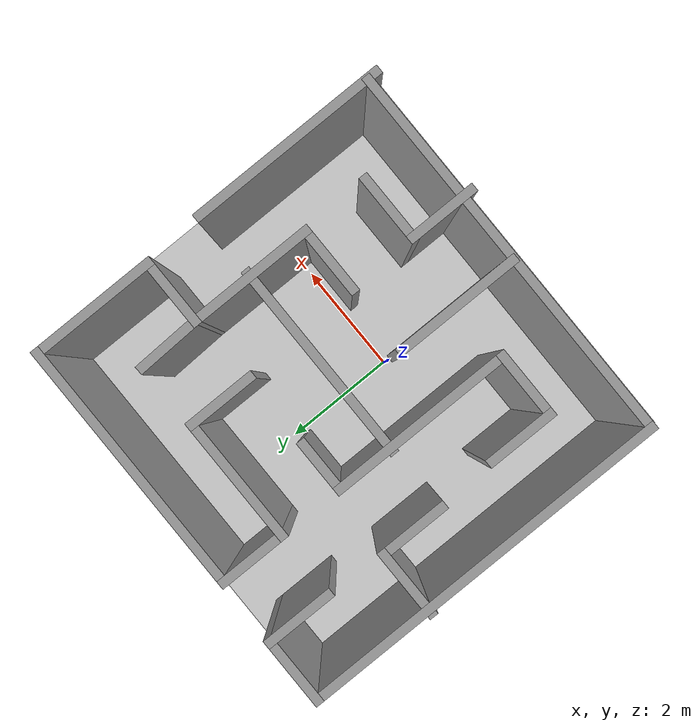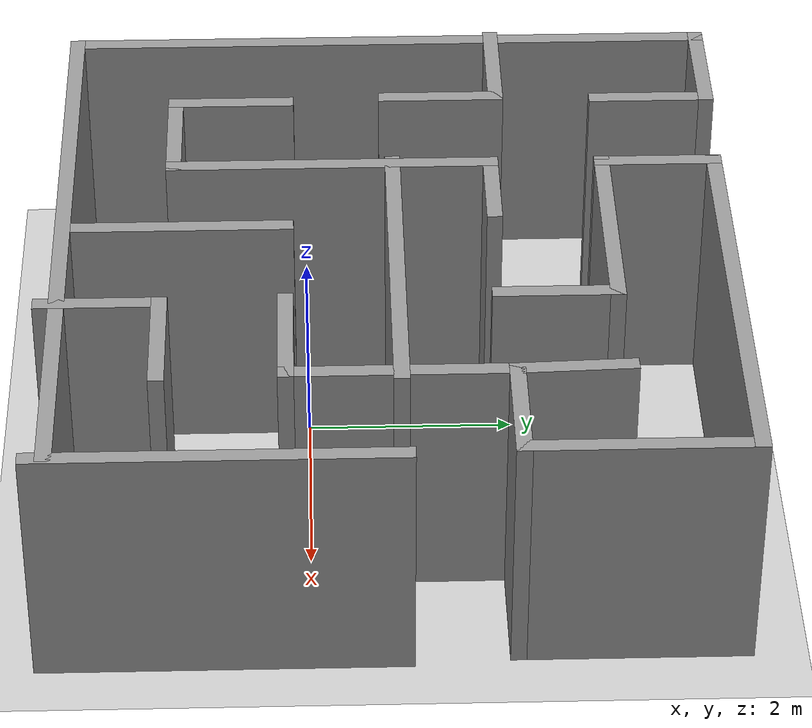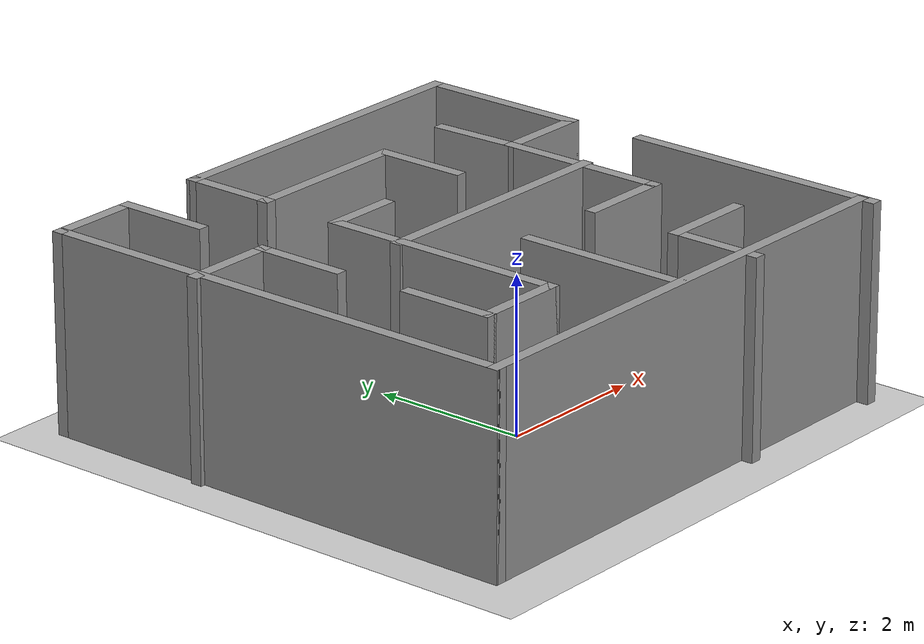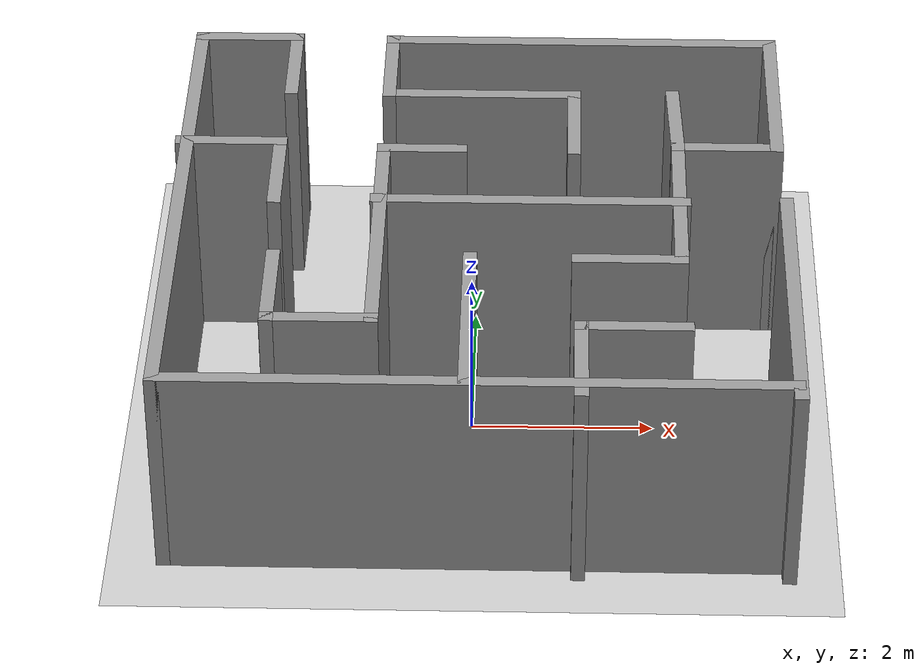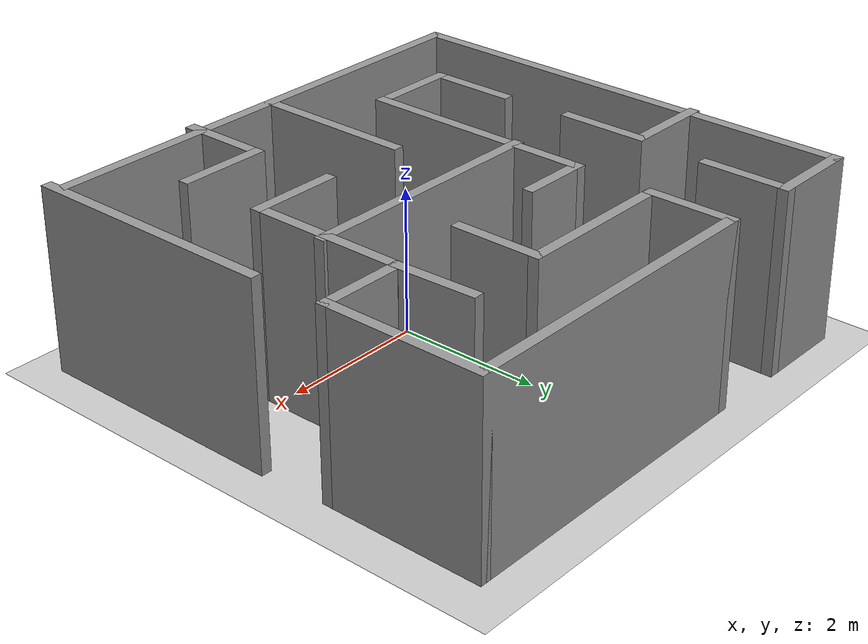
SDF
<sdf version="1.7">
 <world name="default">
  <light name="sun" type="directional">
   <pose>0 0 10 0 -0 0</pose>
   <diffuse>0.8 0.8 0.8 1</diffuse>
   <specular>0.2 0.2 0.2 1</specular>
   <attenuation>
    <range>1000</range>
    <constant>0.9</constant>
    <linear>0.01</linear>
    <quadratic>0.001</quadratic>
   </attenuation>
   <direction>-0.5 0.1 -0.9</direction>
   <spot><inner_angle>0</inner_angle><outer_angle>0</outer_angle><falloff>0</falloff></spot>
  </light>
  <model name="ground_plane">
   <static>1</static>
   <link name="link">
    <collision name="collision">
     <geometry><plane><normal>0 0 1</normal><size>100 100</size></plane></geometry>
     <surface>
      <contact><collide_bitmask>65535</collide_bitmask></contact>
      <friction><ode><mu>100</mu><mu2>50</mu2></ode></friction>
     </surface>
    </collision>
    <visual name="visual">
     <cast_shadows>0</cast_shadows>
     <geometry><plane><normal>0 0 1</normal><size>100 100</size></plane></geometry>
     <material>
      <script><uri>file://media/materials/scripts/gazebo.material</uri><name>Gazebo/Grey</name></script>
     </material>
    </visual>
   </link>
  </model>
  <gravity>0 0 -9.8</gravity>
  <magnetic_field>6e-06 2.3e-05 -4.2e-05</magnetic_field>
  <atmosphere type="adiabatic"/>
  <physics type="ode">
   <max_step_size>0.001</max_step_size>
   <real_time_factor>1</real_time_factor>
   <real_time_update_rate>1000</real_time_update_rate>
  </physics>
  <scene><ambient>0.4 0.4 0.4 1</ambient><background>0.7 0.7 0.7 1</background><shadows>1</shadows></scene>
  <spherical_coordinates>
   <surface_model>EARTH_WGS84</surface_model>
   <latitude_deg>0</latitude_deg>
   <longitude_deg>0</longitude_deg>
   <elevation>0</elevation>
   <heading_deg>0</heading_deg>
  </spherical_coordinates>
  <model name="test_maze">
   <pose>0.065204 0.772473 0 0 -0 0</pose>
   <link name="Wall_0">
    <collision name="Wall_0_Collision">
     <geometry><box><size>1.25 0.15 2.5</size></box></geometry>
     <pose>0 0 1.25 0 -0 0</pose>
    </collision>
    <visual name="Wall_0_Visual">
     <pose>0 0 1.25 0 -0 0</pose>
     <geometry><box><size>1.25 0.15 2.5</size></box></geometry>
     <material>
      <script><uri>file://media/materials/scripts/gazebo.material</uri><name>Gazebo/Grey</name></script>
      <ambient>1 1 1 1</ambient>
     </material>
     <meta><layer>0</layer></meta>
    </visual>
    <pose>-2.18399 2.70337 0 0 -0 1.5708</pose>
   </link>
   <link name="Wall_1">
    <collision name="Wall_1_Collision">
     <geometry><box><size>1.25 0.15 2.5</size></box></geometry>
     <pose>0 0 1.25 0 -0 0</pose>
    </collision>
    <visual name="Wall_1_Visual">
     <pose>0 0 1.25 0 -0 0</pose>
     <geometry><box><size>1.25 0.15 2.5</size></box></geometry>
     <material>
      <script><uri>file://media/materials/scripts/gazebo.material</uri><name>Gazebo/Grey</name></script>
      <ambient>1 1 1 1</ambient>
     </material>
     <meta><layer>0</layer></meta>
    </visual>
    <pose>-2.73399 3.25337 0 0 -0 3.14159</pose>
   </link>
   <link name="Wall_10">
    <collision name="Wall_10_Collision">
     <geometry><box><size>1.25 0.15 2.5</size></box></geometry>
     <pose>0 0 1.25 0 -0 0</pose>
    </collision>
    <visual name="Wall_10_Visual">
     <pose>0 0 1.25 0 -0 0</pose>
     <geometry><box><size>1.25 0.15 2.5</size></box></geometry>
     <material>
      <script><uri>file://media/materials/scripts/gazebo.material</uri><name>Gazebo/Grey</name></script>
      <ambient>1 1 1 1</ambient>
     </material>
     <meta><layer>0</layer></meta>
    </visual>
    <pose>1.10897 -2.6931 0 0 -0 -1.5708</pose>
   </link>
   <link name="Wall_12">
    <collision name="Wall_12_Collision">
     <geometry><box><size>2.25 0.15 2.5</size></box></geometry>
     <pose>0 0 1.25 0 -0 0</pose>
    </collision>
    <visual name="Wall_12_Visual">
     <pose>0 0 1.25 0 -0 0</pose>
     <geometry><box><size>2.25 0.15 2.5</size></box></geometry>
     <material>
      <script><uri>file://media/materials/scripts/gazebo.material</uri><name>Gazebo/Grey</name></script>
      <ambient>1 1 1 1</ambient>
     </material>
     <meta><layer>0</layer></meta>
    </visual>
    <pose>-0.080957 -2.01832 0 0 -0 1.5708</pose>
   </link>
   <link name="Wall_14">
    <collision name="Wall_14_Collision">
     <geometry><box><size>1.25 0.15 2.5</size></box></geometry>
     <pose>0 0 1.25 0 -0 0</pose>
    </collision>
    <visual name="Wall_14_Visual">
     <pose>0 0 1.25 0 -0 0</pose>
     <geometry><box><size>1.25 0.15 2.5</size></box></geometry>
     <material>
      <script><uri>file://media/materials/scripts/gazebo.material</uri><name>Gazebo/Grey</name></script>
      <ambient>1 1 1 1</ambient>
     </material>
     <meta><layer>0</layer></meta>
    </visual>
    <pose>1.02931 1.57579 0 0 -0 1.5708</pose>
   </link>
   <link name="Wall_15">
    <collision name="Wall_15_Collision">
     <geometry><box><size>2.25 0.15 2.5</size></box></geometry>
     <pose>0 0 1.25 0 -0 0</pose>
    </collision>
    <visual name="Wall_15_Visual">
     <pose>0 0 1.25 0 -0 0</pose>
     <geometry><box><size>2.25 0.15 2.5</size></box></geometry>
     <material>
      <script><uri>file://media/materials/scripts/gazebo.material</uri><name>Gazebo/Grey</name></script>
      <ambient>1 1 1 1</ambient>
     </material>
     <meta><layer>0</layer></meta>
    </visual>
    <pose>-0.020688 2.1258 0 0 -0 3.14159</pose>
   </link>
   <link name="Wall_16">
    <collision name="Wall_16_Collision">
     <geometry><box><size>1.25 0.15 2.5</size></box></geometry>
     <pose>0 0 1.25 0 -0 0</pose>
    </collision>
    <visual name="Wall_16_Visual">
     <pose>0 0 1.25 0 -0 0</pose>
     <geometry><box><size>1.25 0.15 2.5</size></box></geometry>
     <material>
      <script><uri>file://media/materials/scripts/gazebo.material</uri><name>Gazebo/Grey</name></script>
      <ambient>1 1 1 1</ambient>
     </material>
     <meta><layer>0</layer></meta>
    </visual>
    <pose>-1.07069 2.67579 0 0 -0 1.5708</pose>
   </link>
   <link name="Wall_17">
    <collision name="Wall_17_Collision">
     <geometry><box><size>4.5 0.15 2.5</size></box></geometry>
     <pose>0 0 1.25 0 -0 0</pose>
    </collision>
    <visual name="Wall_17_Visual">
     <pose>0 0 1.25 0 -0 0</pose>
     <geometry><box><size>4.5 0.15 2.5</size></box></geometry>
     <material>
      <script><uri>file://media/materials/scripts/gazebo.material</uri><name>Gazebo/Grey</name></script>
      <ambient>1 1 1 1</ambient>
     </material>
     <meta><layer>0</layer></meta>
    </visual>
    <pose>1.10431 3.22579 0 0 -0 0</pose>
   </link>
   <link name="Wall_18">
    <collision name="Wall_18_Collision">
     <geometry><box><size>2.25 0.15 2.5</size></box></geometry>
     <pose>0 0 1.25 0 -0 0</pose>
    </collision>
    <visual name="Wall_18_Visual">
     <pose>0 0 1.25 0 -0 0</pose>
     <geometry><box><size>2.25 0.15 2.5</size></box></geometry>
     <material>
      <script><uri>file://media/materials/scripts/gazebo.material</uri><name>Gazebo/Grey</name></script>
      <ambient>1 1 1 1</ambient>
     </material>
     <meta><layer>0</layer></meta>
    </visual>
    <pose>3.27931 2.17579 0 0 -0 -1.5708</pose>
   </link>
   <link name="Wall_19">
    <collision name="Wall_19_Collision">
     <geometry><box><size>1.25 0.15 2.5</size></box></geometry>
     <pose>0 0 1.25 0 -0 0</pose>
    </collision>
    <visual name="Wall_19_Visual">
     <pose>0 0 1.25 0 -0 0</pose>
     <geometry><box><size>1.25 0.15 2.5</size></box></geometry>
     <material>
      <script><uri>file://media/materials/scripts/gazebo.material</uri><name>Gazebo/Grey</name></script>
      <ambient>1 1 1 1</ambient>
     </material>
     <meta><layer>0</layer></meta>
    </visual>
    <pose>2.72931 1.12579 0 0 -0 3.14159</pose>
   </link>
   <link name="Wall_2">
    <collision name="Wall_2_Collision">
     <geometry><box><size>6.5 0.15 2.5</size></box></geometry>
     <pose>0 0 1.25 0 -0 0</pose>
    </collision>
    <visual name="Wall_2_Visual">
     <pose>0 0 1.25 0 -0 0</pose>
     <geometry><box><size>6.5 0.15 2.5</size></box></geometry>
     <material>
      <script><uri>file://media/materials/scripts/gazebo.material</uri><name>Gazebo/Grey</name></script>
      <ambient>1 1 1 1</ambient>
     </material>
     <meta><layer>0</layer></meta>
    </visual>
    <pose>-3.28399 0.078368 0 0 -0 -1.5708</pose>
   </link>
   <link name="Wall_20">
    <collision name="Wall_20_Collision">
     <geometry><box><size>2.25 0.15 2.5</size></box></geometry>
     <pose>0 0 1.25 0 -0 0</pose>
    </collision>
    <visual name="Wall_20_Visual">
     <pose>0 0 1.25 0 -0 0</pose>
     <geometry><box><size>2.25 0.15 2.5</size></box></geometry>
     <material>
      <script><uri>file://media/materials/scripts/gazebo.material</uri><name>Gazebo/Grey</name></script>
      <ambient>1 1 1 1</ambient>
     </material>
     <meta><layer>0</layer></meta>
    </visual>
    <pose>2.17931 0.075794 0 0 -0 -1.5708</pose>
   </link>
   <link name="Wall_21">
    <collision name="Wall_21_Collision">
     <geometry><box><size>1.25 0.15 2.5</size></box></geometry>
     <pose>0 0 1.25 0 -0 0</pose>
    </collision>
    <visual name="Wall_21_Visual">
     <pose>0 0 1.25 0 -0 0</pose>
     <geometry><box><size>1.25 0.15 2.5</size></box></geometry>
     <material>
      <script><uri>file://media/materials/scripts/gazebo.material</uri><name>Gazebo/Grey</name></script>
      <ambient>1 1 1 1</ambient>
     </material>
     <meta><layer>0</layer></meta>
    </visual>
    <pose>1.62931 -0.974206 0 0 -0 3.14159</pose>
   </link>
   <link name="Wall_23">
    <collision name="Wall_23_Collision">
     <geometry><box><size>1.25 0.15 2.5</size></box></geometry>
     <pose>0 0 1.25 0 -0 0</pose>
    </collision>
    <visual name="Wall_23_Visual">
     <pose>0 0 1.25 0 -0 0</pose>
     <geometry><box><size>1.25 0.15 2.5</size></box></geometry>
     <material>
      <script><uri>file://media/materials/scripts/gazebo.material</uri><name>Gazebo/Grey</name></script>
      <ambient>1 1 1 1</ambient>
     </material>
     <meta><layer>0</layer></meta>
    </visual>
    <pose>-2.18584 -1.51344 0 0 -0 -1.5708</pose>
   </link>
   <link name="Wall_24">
    <collision name="Wall_24_Collision">
     <geometry><box><size>1.25 0.15 2.5</size></box></geometry>
     <pose>0 0 1.25 0 -0 0</pose>
    </collision>
    <visual name="Wall_24_Visual">
     <pose>0 0 1.25 0 -0 0</pose>
     <geometry><box><size>1.25 0.15 2.5</size></box></geometry>
     <material>
      <script><uri>file://media/materials/scripts/gazebo.material</uri><name>Gazebo/Grey</name></script>
      <ambient>1 1 1 1</ambient>
     </material>
     <meta><layer>0</layer></meta>
    </visual>
    <pose>-1.63584 -2.06344 0 0 -0 0</pose>
   </link>
   <link name="Wall_25">
    <collision name="Wall_25_Collision">
     <geometry><box><size>3.25 0.15 2.5</size></box></geometry>
     <pose>0 0 1.25 0 -0 0</pose>
    </collision>
    <visual name="Wall_25_Visual">
     <pose>0 0 1.25 0 -0 0</pose>
     <geometry><box><size>3.25 0.15 2.5</size></box></geometry>
     <material>
      <script><uri>file://media/materials/scripts/gazebo.material</uri><name>Gazebo/Grey</name></script>
      <ambient>1 1 1 1</ambient>
     </material>
     <meta><layer>0</layer></meta>
    </visual>
    <pose>-1.08584 -0.513438 0 0 -0 1.5708</pose>
   </link>
   <link name="Wall_26">
    <collision name="Wall_26_Collision">
     <geometry><box><size>1 0.15 2.5</size></box></geometry>
     <pose>0 0 1.25 0 -0 0</pose>
    </collision>
    <visual name="Wall_26_Visual">
     <pose>0 0 1.25 0 -0 0</pose>
     <geometry><box><size>1 0.15 2.5</size></box></geometry>
     <material>
      <script><uri>file://media/materials/scripts/gazebo.material</uri><name>Gazebo/Grey</name></script>
      <ambient>1 1 1 1</ambient>
     </material>
     <meta><layer>0</layer></meta>
    </visual>
    <pose>-0.660843 1.03656 0 0 -0 0</pose>
   </link>
   <link name="Wall_28">
    <collision name="Wall_28_Collision">
     <geometry><box><size>3.5 0.15 2.5</size></box></geometry>
     <pose>0 0 1.25 0 -0 0</pose>
    </collision>
    <visual name="Wall_28_Visual">
     <pose>0 0 1.25 0 -0 0</pose>
     <geometry><box><size>3.5 0.15 2.5</size></box></geometry>
     <material>
      <script><uri>file://media/materials/scripts/gazebo.material</uri><name>Gazebo/Grey</name></script>
      <ambient>1 1 1 1</ambient>
     </material>
     <meta><layer>0</layer></meta>
    </visual>
    <pose>0.553165 0.077439 0 0 -0 0</pose>
   </link>
   <link name="Wall_30">
    <collision name="Wall_30_Collision">
     <geometry><box><size>1.18416 0.15 2.5</size></box></geometry>
     <pose>0 0 1.25 0 -0 0</pose>
    </collision>
    <visual name="Wall_30_Visual">
     <pose>0 0 1.25 0 -0 0</pose>
     <geometry><box><size>1.18416 0.15 2.5</size></box></geometry>
     <material>
      <script><uri>file://media/materials/scripts/gazebo.material</uri><name>Gazebo/Grey</name></script>
      <ambient>1 1 1 1</ambient>
     </material>
     <meta><layer>0</layer></meta>
    </visual>
    <pose>2.15945 1.64249 0 0 -0 -1.53237</pose>
   </link>
   <link name="Wall_32">
    <collision name="Wall_32_Collision">
     <geometry><box><size>1.25 0.15 2.5</size></box></geometry>
     <pose>0 0 1.25 0 -0 0</pose>
    </collision>
    <visual name="Wall_32_Visual">
     <pose>0 0 1.25 0 -0 0</pose>
     <geometry><box><size>1.25 0.15 2.5</size></box></geometry>
     <material>
      <script><uri>file://media/materials/scripts/gazebo.material</uri><name>Gazebo/Grey</name></script>
      <ambient>1 1 1 1</ambient>
     </material>
     <meta><layer>0</layer></meta>
    </visual>
    <pose>-2.79237 1.14145 0 0 -0 0</pose>
   </link>
   <link name="Wall_33">
    <collision name="Wall_33_Collision">
     <geometry><box><size>1.25 0.15 2.5</size></box></geometry>
     <pose>0 0 1.25 0 -0 0</pose>
    </collision>
    <visual name="Wall_33_Visual">
     <pose>0 0 1.25 0 -0 0</pose>
     <geometry><box><size>1.25 0.15 2.5</size></box></geometry>
     <material>
      <script><uri>file://media/materials/scripts/gazebo.material</uri><name>Gazebo/Grey</name></script>
      <ambient>1 1 1 1</ambient>
     </material>
     <meta><layer>0</layer></meta>
    </visual>
    <pose>-2.24237 0.591447 0 0 -0 -1.5708</pose>
   </link>
   <link name="Wall_35">
    <collision name="Wall_35_Collision">
     <geometry><box><size>6.75 0.15 2.5</size></box></geometry>
     <pose>0 0 1.25 0 -0 0</pose>
    </collision>
    <visual name="Wall_35_Visual">
     <pose>0 0 1.25 0 -0 0</pose>
     <geometry><box><size>6.75 0.15 2.5</size></box></geometry>
     <material>
      <script><uri>file://media/materials/scripts/gazebo.material</uri><name>Gazebo/Grey</name></script>
      <ambient>1 1 1 1</ambient>
     </material>
     <meta><layer>0</layer></meta>
    </visual>
    <pose>0.01601 -3.09663 0 0 -0 0</pose>
   </link>
   <link name="Wall_7">
    <collision name="Wall_7_Collision">
     <geometry><box><size>3.5 0.15 2.5</size></box></geometry>
     <pose>0 0 1.25 0 -0 0</pose>
    </collision>
    <visual name="Wall_7_Visual">
     <pose>0 0 1.25 0 -0 0</pose>
     <geometry><box><size>3.5 0.15 2.5</size></box></geometry>
     <material>
      <script><uri>file://media/materials/scripts/gazebo.material</uri><name>Gazebo/Grey</name></script>
      <ambient>1 1 1 1</ambient>
     </material>
     <meta><layer>0</layer></meta>
    </visual>
    <pose>3.34237 -1.57837 0 0 -0 1.5708</pose>
   </link>
   <link name="Wall_9">
    <collision name="Wall_9_Collision">
     <geometry><box><size>1.25 0.15 2.5</size></box></geometry>
     <pose>0 0 1.25 0 -0 0</pose>
    </collision>
    <visual name="Wall_9_Visual">
     <pose>0 0 1.25 0 -0 0</pose>
     <geometry><box><size>1.25 0.15 2.5</size></box></geometry>
     <material>
      <script><uri>file://media/materials/scripts/gazebo.material</uri><name>Gazebo/Grey</name></script>
      <ambient>1 1 1 1</ambient>
     </material>
     <meta><layer>0</layer></meta>
    </visual>
    <pose>1.65897 -2.1431 0 0 -0 3.14159</pose>
   </link>
   <static>1</static>
  </model>
 </world>
</sdf>
